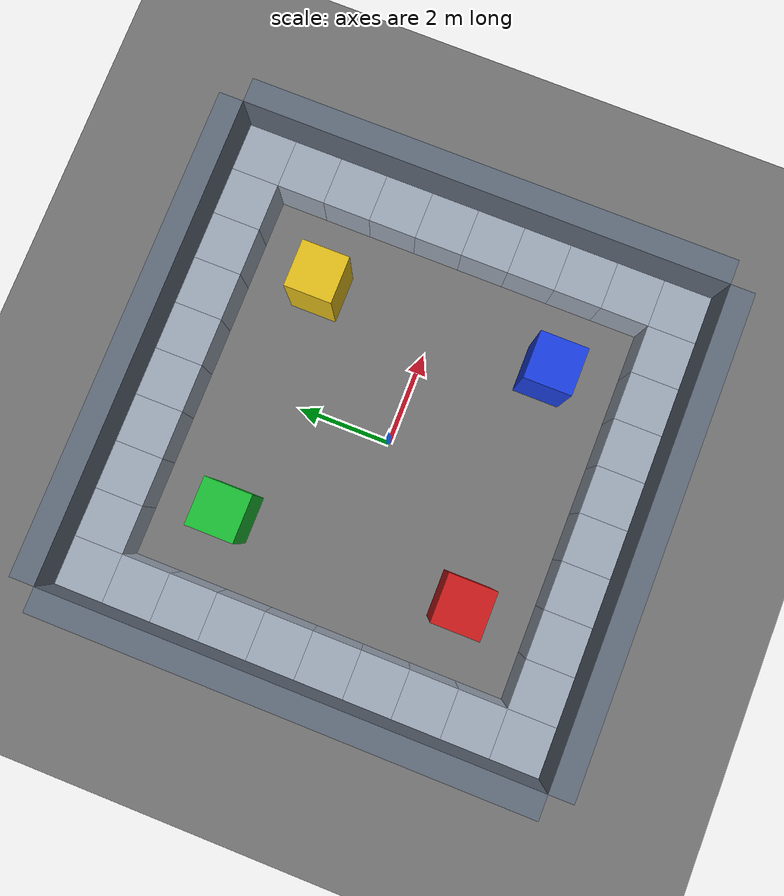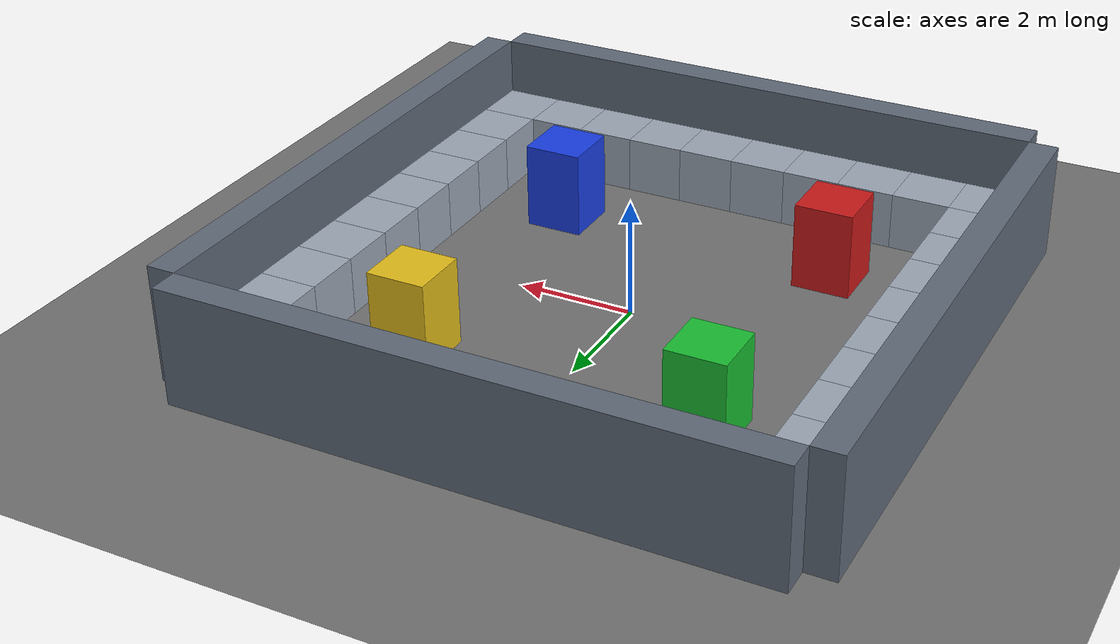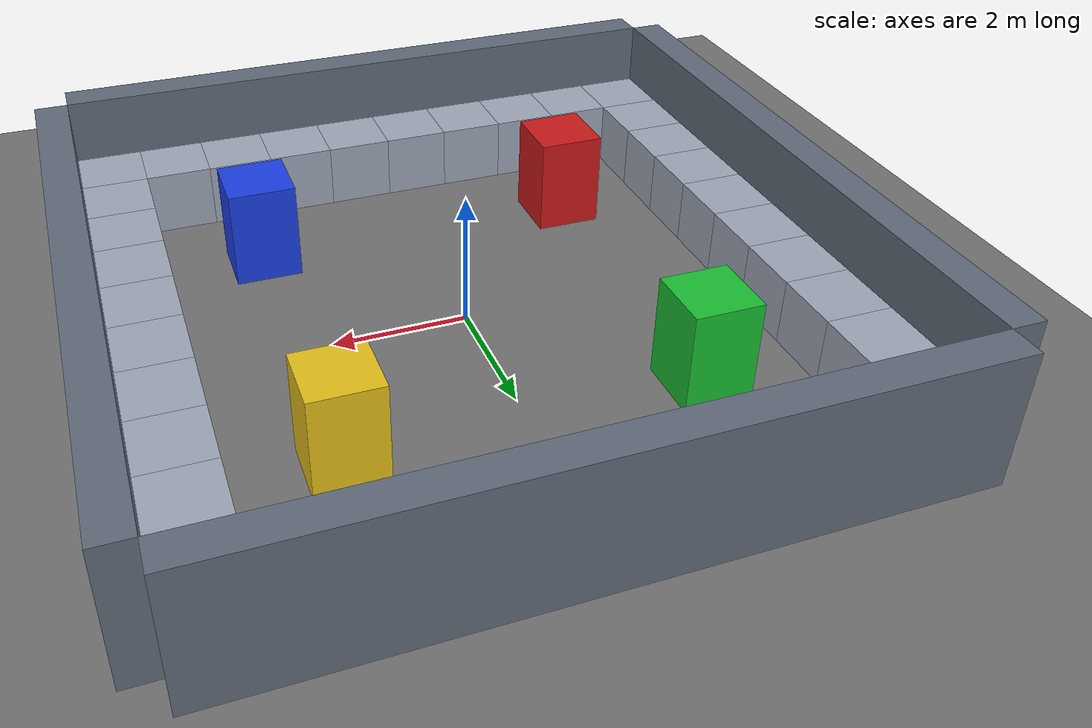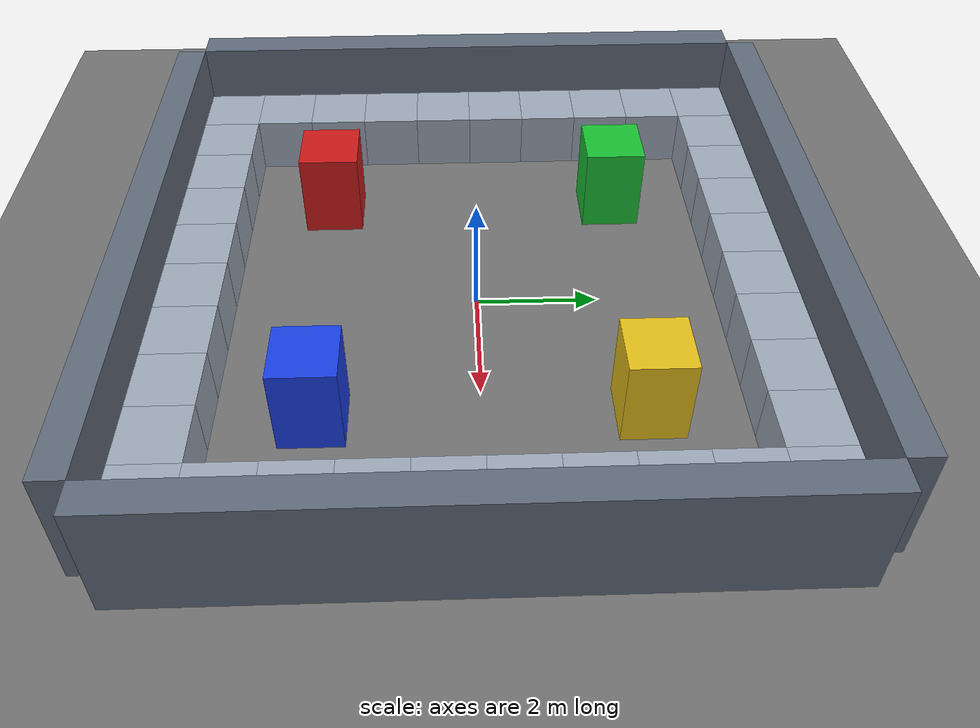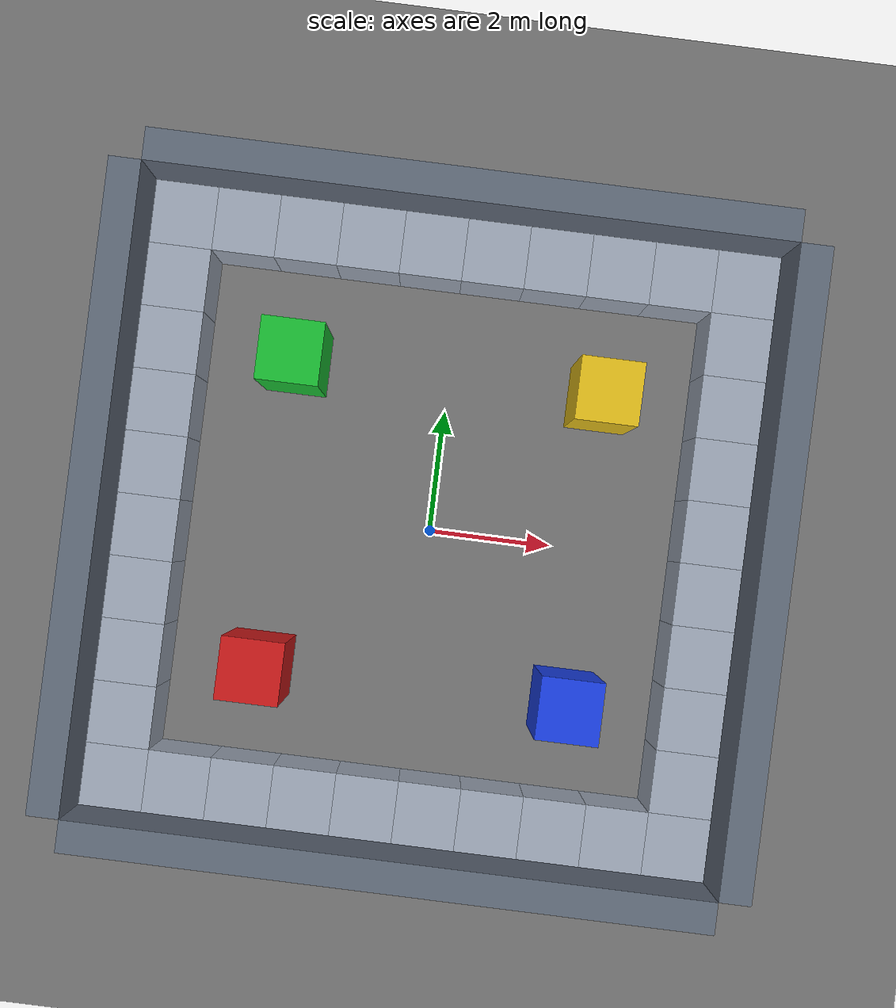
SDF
<?xml version="1.0" ?>
<sdf version="1.8">
  <world name="random_world">
    <scene>
      <ambient>0.65 0.65 0.65 1</ambient>
      <background>0.82 0.88 0.95 1</background>
      <shadows>true</shadows>
    </scene>
    <physics name="1ms" type="ignored">
      <max_step_size>0.01</max_step_size>
      <real_time_update_rate>400</real_time_update_rate>
      <real_time_factor>2.0</real_time_factor>
    </physics>

    <plugin filename="ignition-gazebo-physics-system" name="ignition::gazebo::systems::Physics">
      <include_entity_names>true</include_entity_names>
    </plugin>
    <plugin filename="ignition-gazebo-sensors-system" name="ignition::gazebo::systems::Sensors">
      <render_engine>ogre</render_engine>
    </plugin>
    <plugin filename="ignition-gazebo-user-commands-system" name="ignition::gazebo::systems::UserCommands"/>
    <plugin filename="libignition-gazebo-contact-system.so" name="ignition::gazebo::systems::Contact">
      <topic>/world/random_world/physics/contacts</topic>
    </plugin>
    <plugin filename="ignition-gazebo-scene-broadcaster-system" name="ignition::gazebo::systems::SceneBroadcaster"/>

    <light name="sun" type="directional">
      <pose>0 0 10 0 0 0</pose>
      <cast_shadows>true</cast_shadows>
      <intensity>1</intensity>
      <direction>-0.5 0.5 -1</direction>
      <diffuse>1 1 1 1</diffuse>
      <specular>0.1 0.1 0.1 1</specular>
      <attenuation><range>20</range><linear>0.1</linear><constant>0.9</constant><quadratic>0.01</quadratic></attenuation>
    </light>

    <model name="ground_plane">
      <static>true</static>
      <link name="link">
        <collision name="collision"><geometry><plane><normal>0 0 1</normal><size>50 50</size></plane></geometry></collision>
        <visual name="visual"><geometry><plane><normal>0 0 1</normal><size>50 50</size></plane></geometry><material><ambient>0.45 0.45 0.45 1</ambient><diffuse>0.45 0.45 0.45 1</diffuse></material></visual>
      </link>
    </model>

    <!-- Physical boundary walls are outside the evaluated grid and ignored by the coverage denominator. -->
    <model name="north_wall"><static>true</static><pose>0 5.25 1 0 0 0</pose><link name="link"><collision name="collision"><geometry><box><size>10 0.5 2</size></box></geometry></collision><visual name="visual"><geometry><box><size>10 0.5 2</size></box></geometry><material><ambient>0.38 0.42 0.48 1</ambient><diffuse>0.38 0.42 0.48 1</diffuse></material></visual></link></model>
    <model name="south_wall"><static>true</static><pose>0 -5.25 1 0 0 0</pose><link name="link"><collision name="collision"><geometry><box><size>10 0.5 2</size></box></geometry></collision><visual name="visual"><geometry><box><size>10 0.5 2</size></box></geometry><material><ambient>0.38 0.42 0.48 1</ambient><diffuse>0.38 0.42 0.48 1</diffuse></material></visual></link></model>
    <model name="east_wall"><static>true</static><pose>5.25 0 1 0 0 0</pose><link name="link"><collision name="collision"><geometry><box><size>0.5 10 2</size></box></geometry></collision><visual name="visual"><geometry><box><size>0.5 10 2</size></box></geometry><material><ambient>0.38 0.42 0.48 1</ambient><diffuse>0.38 0.42 0.48 1</diffuse></material></visual></link></model>
    <model name="west_wall"><static>true</static><pose>-5.25 0 1 0 0 0</pose><link name="link"><collision name="collision"><geometry><box><size>0.5 10 2</size></box></geometry></collision><visual name="visual"><geometry><box><size>0.5 10 2</size></box></geometry><material><ambient>0.38 0.42 0.48 1</ambient><diffuse>0.38 0.42 0.48 1</diffuse></material></visual></link></model>

    <!-- Bottom row: y in [-5, -4]. -->
    <model name="coverage_s_0"><static>true</static><pose>-4.5 -4.5 0.5 0 0 0</pose><link name="link"><collision name="collision"><geometry><box><size>1 1 1</size></box></geometry></collision><visual name="visual"><geometry><box><size>1 1 1</size></box></geometry><material><ambient>0.62 0.66 0.72 1</ambient><diffuse>0.62 0.66 0.72 1</diffuse><specular>0.12 0.12 0.12 1</specular></material></visual></link></model>
    <model name="coverage_s_1"><static>true</static><pose>-3.5 -4.5 0.5 0 0 0</pose><link name="link"><collision name="collision"><geometry><box><size>1 1 1</size></box></geometry></collision><visual name="visual"><geometry><box><size>1 1 1</size></box></geometry><material><ambient>0.62 0.66 0.72 1</ambient><diffuse>0.62 0.66 0.72 1</diffuse><specular>0.12 0.12 0.12 1</specular></material></visual></link></model>
    <model name="coverage_s_2"><static>true</static><pose>-2.5 -4.5 0.5 0 0 0</pose><link name="link"><collision name="collision"><geometry><box><size>1 1 1</size></box></geometry></collision><visual name="visual"><geometry><box><size>1 1 1</size></box></geometry><material><ambient>0.62 0.66 0.72 1</ambient><diffuse>0.62 0.66 0.72 1</diffuse><specular>0.12 0.12 0.12 1</specular></material></visual></link></model>
    <model name="coverage_s_3"><static>true</static><pose>-1.5 -4.5 0.5 0 0 0</pose><link name="link"><collision name="collision"><geometry><box><size>1 1 1</size></box></geometry></collision><visual name="visual"><geometry><box><size>1 1 1</size></box></geometry><material><ambient>0.62 0.66 0.72 1</ambient><diffuse>0.62 0.66 0.72 1</diffuse><specular>0.12 0.12 0.12 1</specular></material></visual></link></model>
    <model name="coverage_s_4"><static>true</static><pose>-0.5 -4.5 0.5 0 0 0</pose><link name="link"><collision name="collision"><geometry><box><size>1 1 1</size></box></geometry></collision><visual name="visual"><geometry><box><size>1 1 1</size></box></geometry><material><ambient>0.62 0.66 0.72 1</ambient><diffuse>0.62 0.66 0.72 1</diffuse><specular>0.12 0.12 0.12 1</specular></material></visual></link></model>
    <model name="coverage_s_5"><static>true</static><pose>0.5 -4.5 0.5 0 0 0</pose><link name="link"><collision name="collision"><geometry><box><size>1 1 1</size></box></geometry></collision><visual name="visual"><geometry><box><size>1 1 1</size></box></geometry><material><ambient>0.62 0.66 0.72 1</ambient><diffuse>0.62 0.66 0.72 1</diffuse><specular>0.12 0.12 0.12 1</specular></material></visual></link></model>
    <model name="coverage_s_6"><static>true</static><pose>1.5 -4.5 0.5 0 0 0</pose><link name="link"><collision name="collision"><geometry><box><size>1 1 1</size></box></geometry></collision><visual name="visual"><geometry><box><size>1 1 1</size></box></geometry><material><ambient>0.62 0.66 0.72 1</ambient><diffuse>0.62 0.66 0.72 1</diffuse><specular>0.12 0.12 0.12 1</specular></material></visual></link></model>
    <model name="coverage_s_7"><static>true</static><pose>2.5 -4.5 0.5 0 0 0</pose><link name="link"><collision name="collision"><geometry><box><size>1 1 1</size></box></geometry></collision><visual name="visual"><geometry><box><size>1 1 1</size></box></geometry><material><ambient>0.62 0.66 0.72 1</ambient><diffuse>0.62 0.66 0.72 1</diffuse><specular>0.12 0.12 0.12 1</specular></material></visual></link></model>
    <model name="coverage_s_8"><static>true</static><pose>3.5 -4.5 0.5 0 0 0</pose><link name="link"><collision name="collision"><geometry><box><size>1 1 1</size></box></geometry></collision><visual name="visual"><geometry><box><size>1 1 1</size></box></geometry><material><ambient>0.62 0.66 0.72 1</ambient><diffuse>0.62 0.66 0.72 1</diffuse><specular>0.12 0.12 0.12 1</specular></material></visual></link></model>
    <model name="coverage_s_9"><static>true</static><pose>4.5 -4.5 0.5 0 0 0</pose><link name="link"><collision name="collision"><geometry><box><size>1 1 1</size></box></geometry></collision><visual name="visual"><geometry><box><size>1 1 1</size></box></geometry><material><ambient>0.62 0.66 0.72 1</ambient><diffuse>0.62 0.66 0.72 1</diffuse><specular>0.12 0.12 0.12 1</specular></material></visual></link></model>

    <!-- Top row: y in [4, 5]. -->
    <model name="coverage_n_0"><static>true</static><pose>-4.5 4.5 0.5 0 0 0</pose><link name="link"><collision name="collision"><geometry><box><size>1 1 1</size></box></geometry></collision><visual name="visual"><geometry><box><size>1 1 1</size></box></geometry><material><ambient>0.62 0.66 0.72 1</ambient><diffuse>0.62 0.66 0.72 1</diffuse><specular>0.12 0.12 0.12 1</specular></material></visual></link></model>
    <model name="coverage_n_1"><static>true</static><pose>-3.5 4.5 0.5 0 0 0</pose><link name="link"><collision name="collision"><geometry><box><size>1 1 1</size></box></geometry></collision><visual name="visual"><geometry><box><size>1 1 1</size></box></geometry><material><ambient>0.62 0.66 0.72 1</ambient><diffuse>0.62 0.66 0.72 1</diffuse><specular>0.12 0.12 0.12 1</specular></material></visual></link></model>
    <model name="coverage_n_2"><static>true</static><pose>-2.5 4.5 0.5 0 0 0</pose><link name="link"><collision name="collision"><geometry><box><size>1 1 1</size></box></geometry></collision><visual name="visual"><geometry><box><size>1 1 1</size></box></geometry><material><ambient>0.62 0.66 0.72 1</ambient><diffuse>0.62 0.66 0.72 1</diffuse><specular>0.12 0.12 0.12 1</specular></material></visual></link></model>
    <model name="coverage_n_3"><static>true</static><pose>-1.5 4.5 0.5 0 0 0</pose><link name="link"><collision name="collision"><geometry><box><size>1 1 1</size></box></geometry></collision><visual name="visual"><geometry><box><size>1 1 1</size></box></geometry><material><ambient>0.62 0.66 0.72 1</ambient><diffuse>0.62 0.66 0.72 1</diffuse><specular>0.12 0.12 0.12 1</specular></material></visual></link></model>
    <model name="coverage_n_4"><static>true</static><pose>-0.5 4.5 0.5 0 0 0</pose><link name="link"><collision name="collision"><geometry><box><size>1 1 1</size></box></geometry></collision><visual name="visual"><geometry><box><size>1 1 1</size></box></geometry><material><ambient>0.62 0.66 0.72 1</ambient><diffuse>0.62 0.66 0.72 1</diffuse><specular>0.12 0.12 0.12 1</specular></material></visual></link></model>
    <model name="coverage_n_5"><static>true</static><pose>0.5 4.5 0.5 0 0 0</pose><link name="link"><collision name="collision"><geometry><box><size>1 1 1</size></box></geometry></collision><visual name="visual"><geometry><box><size>1 1 1</size></box></geometry><material><ambient>0.62 0.66 0.72 1</ambient><diffuse>0.62 0.66 0.72 1</diffuse><specular>0.12 0.12 0.12 1</specular></material></visual></link></model>
    <model name="coverage_n_6"><static>true</static><pose>1.5 4.5 0.5 0 0 0</pose><link name="link"><collision name="collision"><geometry><box><size>1 1 1</size></box></geometry></collision><visual name="visual"><geometry><box><size>1 1 1</size></box></geometry><material><ambient>0.62 0.66 0.72 1</ambient><diffuse>0.62 0.66 0.72 1</diffuse><specular>0.12 0.12 0.12 1</specular></material></visual></link></model>
    <model name="coverage_n_7"><static>true</static><pose>2.5 4.5 0.5 0 0 0</pose><link name="link"><collision name="collision"><geometry><box><size>1 1 1</size></box></geometry></collision><visual name="visual"><geometry><box><size>1 1 1</size></box></geometry><material><ambient>0.62 0.66 0.72 1</ambient><diffuse>0.62 0.66 0.72 1</diffuse><specular>0.12 0.12 0.12 1</specular></material></visual></link></model>
    <model name="coverage_n_8"><static>true</static><pose>3.5 4.5 0.5 0 0 0</pose><link name="link"><collision name="collision"><geometry><box><size>1 1 1</size></box></geometry></collision><visual name="visual"><geometry><box><size>1 1 1</size></box></geometry><material><ambient>0.62 0.66 0.72 1</ambient><diffuse>0.62 0.66 0.72 1</diffuse><specular>0.12 0.12 0.12 1</specular></material></visual></link></model>
    <model name="coverage_n_9"><static>true</static><pose>4.5 4.5 0.5 0 0 0</pose><link name="link"><collision name="collision"><geometry><box><size>1 1 1</size></box></geometry></collision><visual name="visual"><geometry><box><size>1 1 1</size></box></geometry><material><ambient>0.62 0.66 0.72 1</ambient><diffuse>0.62 0.66 0.72 1</diffuse><specular>0.12 0.12 0.12 1</specular></material></visual></link></model>

    <!-- Left and right columns, excluding corners already covered above. -->
    <model name="coverage_w_1"><static>true</static><pose>-4.5 -3.5 0.5 0 0 0</pose><link name="link"><collision name="collision"><geometry><box><size>1 1 1</size></box></geometry></collision><visual name="visual"><geometry><box><size>1 1 1</size></box></geometry><material><ambient>0.62 0.66 0.72 1</ambient><diffuse>0.62 0.66 0.72 1</diffuse><specular>0.12 0.12 0.12 1</specular></material></visual></link></model>
    <model name="coverage_e_1"><static>true</static><pose>4.5 -3.5 0.5 0 0 0</pose><link name="link"><collision name="collision"><geometry><box><size>1 1 1</size></box></geometry></collision><visual name="visual"><geometry><box><size>1 1 1</size></box></geometry><material><ambient>0.62 0.66 0.72 1</ambient><diffuse>0.62 0.66 0.72 1</diffuse><specular>0.12 0.12 0.12 1</specular></material></visual></link></model>
    <model name="coverage_w_2"><static>true</static><pose>-4.5 -2.5 0.5 0 0 0</pose><link name="link"><collision name="collision"><geometry><box><size>1 1 1</size></box></geometry></collision><visual name="visual"><geometry><box><size>1 1 1</size></box></geometry><material><ambient>0.62 0.66 0.72 1</ambient><diffuse>0.62 0.66 0.72 1</diffuse><specular>0.12 0.12 0.12 1</specular></material></visual></link></model>
    <model name="coverage_e_2"><static>true</static><pose>4.5 -2.5 0.5 0 0 0</pose><link name="link"><collision name="collision"><geometry><box><size>1 1 1</size></box></geometry></collision><visual name="visual"><geometry><box><size>1 1 1</size></box></geometry><material><ambient>0.62 0.66 0.72 1</ambient><diffuse>0.62 0.66 0.72 1</diffuse><specular>0.12 0.12 0.12 1</specular></material></visual></link></model>
    <model name="coverage_w_3"><static>true</static><pose>-4.5 -1.5 0.5 0 0 0</pose><link name="link"><collision name="collision"><geometry><box><size>1 1 1</size></box></geometry></collision><visual name="visual"><geometry><box><size>1 1 1</size></box></geometry><material><ambient>0.62 0.66 0.72 1</ambient><diffuse>0.62 0.66 0.72 1</diffuse><specular>0.12 0.12 0.12 1</specular></material></visual></link></model>
    <model name="coverage_e_3"><static>true</static><pose>4.5 -1.5 0.5 0 0 0</pose><link name="link"><collision name="collision"><geometry><box><size>1 1 1</size></box></geometry></collision><visual name="visual"><geometry><box><size>1 1 1</size></box></geometry><material><ambient>0.62 0.66 0.72 1</ambient><diffuse>0.62 0.66 0.72 1</diffuse><specular>0.12 0.12 0.12 1</specular></material></visual></link></model>
    <model name="coverage_w_4"><static>true</static><pose>-4.5 -0.5 0.5 0 0 0</pose><link name="link"><collision name="collision"><geometry><box><size>1 1 1</size></box></geometry></collision><visual name="visual"><geometry><box><size>1 1 1</size></box></geometry><material><ambient>0.62 0.66 0.72 1</ambient><diffuse>0.62 0.66 0.72 1</diffuse><specular>0.12 0.12 0.12 1</specular></material></visual></link></model>
    <model name="coverage_e_4"><static>true</static><pose>4.5 -0.5 0.5 0 0 0</pose><link name="link"><collision name="collision"><geometry><box><size>1 1 1</size></box></geometry></collision><visual name="visual"><geometry><box><size>1 1 1</size></box></geometry><material><ambient>0.62 0.66 0.72 1</ambient><diffuse>0.62 0.66 0.72 1</diffuse><specular>0.12 0.12 0.12 1</specular></material></visual></link></model>
    <model name="coverage_w_5"><static>true</static><pose>-4.5 0.5 0.5 0 0 0</pose><link name="link"><collision name="collision"><geometry><box><size>1 1 1</size></box></geometry></collision><visual name="visual"><geometry><box><size>1 1 1</size></box></geometry><material><ambient>0.62 0.66 0.72 1</ambient><diffuse>0.62 0.66 0.72 1</diffuse><specular>0.12 0.12 0.12 1</specular></material></visual></link></model>
    <model name="coverage_e_5"><static>true</static><pose>4.5 0.5 0.5 0 0 0</pose><link name="link"><collision name="collision"><geometry><box><size>1 1 1</size></box></geometry></collision><visual name="visual"><geometry><box><size>1 1 1</size></box></geometry><material><ambient>0.62 0.66 0.72 1</ambient><diffuse>0.62 0.66 0.72 1</diffuse><specular>0.12 0.12 0.12 1</specular></material></visual></link></model>
    <model name="coverage_w_6"><static>true</static><pose>-4.5 1.5 0.5 0 0 0</pose><link name="link"><collision name="collision"><geometry><box><size>1 1 1</size></box></geometry></collision><visual name="visual"><geometry><box><size>1 1 1</size></box></geometry><material><ambient>0.62 0.66 0.72 1</ambient><diffuse>0.62 0.66 0.72 1</diffuse><specular>0.12 0.12 0.12 1</specular></material></visual></link></model>
    <model name="coverage_e_6"><static>true</static><pose>4.5 1.5 0.5 0 0 0</pose><link name="link"><collision name="collision"><geometry><box><size>1 1 1</size></box></geometry></collision><visual name="visual"><geometry><box><size>1 1 1</size></box></geometry><material><ambient>0.62 0.66 0.72 1</ambient><diffuse>0.62 0.66 0.72 1</diffuse><specular>0.12 0.12 0.12 1</specular></material></visual></link></model>
    <model name="coverage_w_7"><static>true</static><pose>-4.5 2.5 0.5 0 0 0</pose><link name="link"><collision name="collision"><geometry><box><size>1 1 1</size></box></geometry></collision><visual name="visual"><geometry><box><size>1 1 1</size></box></geometry><material><ambient>0.62 0.66 0.72 1</ambient><diffuse>0.62 0.66 0.72 1</diffuse><specular>0.12 0.12 0.12 1</specular></material></visual></link></model>
    <model name="coverage_e_7"><static>true</static><pose>4.5 2.5 0.5 0 0 0</pose><link name="link"><collision name="collision"><geometry><box><size>1 1 1</size></box></geometry></collision><visual name="visual"><geometry><box><size>1 1 1</size></box></geometry><material><ambient>0.62 0.66 0.72 1</ambient><diffuse>0.62 0.66 0.72 1</diffuse><specular>0.12 0.12 0.12 1</specular></material></visual></link></model>
    <model name="coverage_w_8"><static>true</static><pose>-4.5 3.5 0.5 0 0 0</pose><link name="link"><collision name="collision"><geometry><box><size>1 1 1</size></box></geometry></collision><visual name="visual"><geometry><box><size>1 1 1</size></box></geometry><material><ambient>0.62 0.66 0.72 1</ambient><diffuse>0.62 0.66 0.72 1</diffuse><specular>0.12 0.12 0.12 1</specular></material></visual></link></model>
    <model name="coverage_e_8"><static>true</static><pose>4.5 3.5 0.5 0 0 0</pose><link name="link"><collision name="collision"><geometry><box><size>1 1 1</size></box></geometry></collision><visual name="visual"><geometry><box><size>1 1 1</size></box></geometry><material><ambient>0.62 0.66 0.72 1</ambient><diffuse>0.62 0.66 0.72 1</diffuse><specular>0.12 0.12 0.12 1</specular></material></visual></link></model>

    <!-- Four visible interior landmarks. Each occupies exactly one evaluated cell. -->
    <model name="interior_red">
      <static>true</static><pose>-2.5 -2.5 0.75 0 0 0</pose>
      <link name="link">
        <collision name="collision"><geometry><box><size>1 1 1.5</size></box></geometry></collision>
        <visual name="visual"><geometry><box><size>1 1 1.5</size></box></geometry><material><ambient>0.8 0.1 0.1 1</ambient><diffuse>0.8 0.1 0.1 1</diffuse></material></visual>
      </link>
    </model>
    <model name="interior_blue">
      <static>true</static><pose>2.5 -2.5 0.75 0 0 0</pose>
      <link name="link">
        <collision name="collision"><geometry><box><size>1 1 1.5</size></box></geometry></collision>
        <visual name="visual"><geometry><box><size>1 1 1.5</size></box></geometry><material><ambient>0.1 0.25 0.9 1</ambient><diffuse>0.1 0.25 0.9 1</diffuse></material></visual>
      </link>
    </model>
    <model name="interior_green">
      <static>true</static><pose>-2.5 2.5 0.75 0 0 0</pose>
      <link name="link">
        <collision name="collision"><geometry><box><size>1 1 1.5</size></box></geometry></collision>
        <visual name="visual"><geometry><box><size>1 1 1.5</size></box></geometry><material><ambient>0.1 0.75 0.2 1</ambient><diffuse>0.1 0.75 0.2 1</diffuse></material></visual>
      </link>
    </model>
    <model name="interior_yellow">
      <static>true</static><pose>2.5 2.5 0.75 0 0 0</pose>
      <link name="link">
        <collision name="collision"><geometry><box><size>1 1 1.5</size></box></geometry></collision>
        <visual name="visual"><geometry><box><size>1 1 1.5</size></box></geometry><material><ambient>0.9 0.75 0.1 1</ambient><diffuse>0.9 0.75 0.1 1</diffuse></material></visual>
      </link>
    </model>
  </world>
</sdf>
